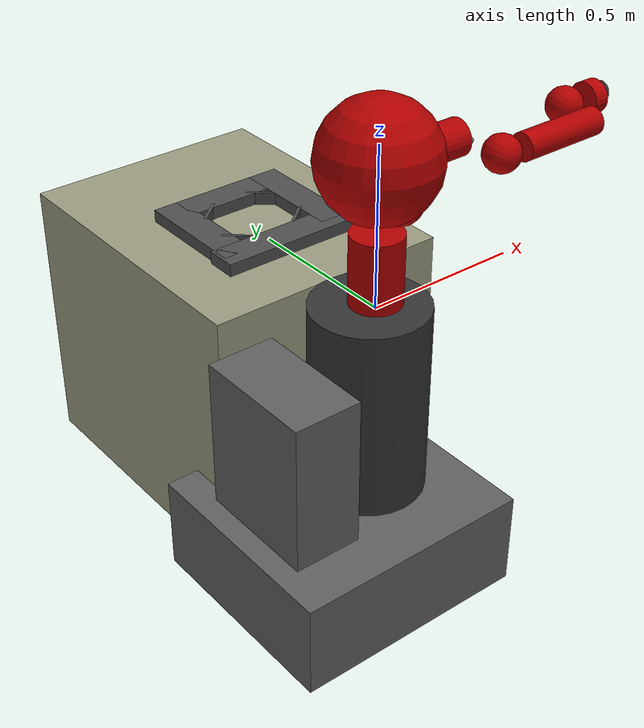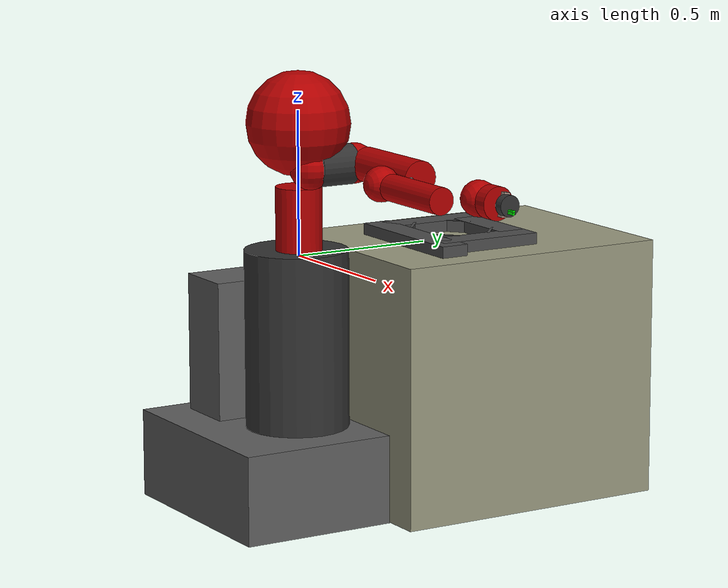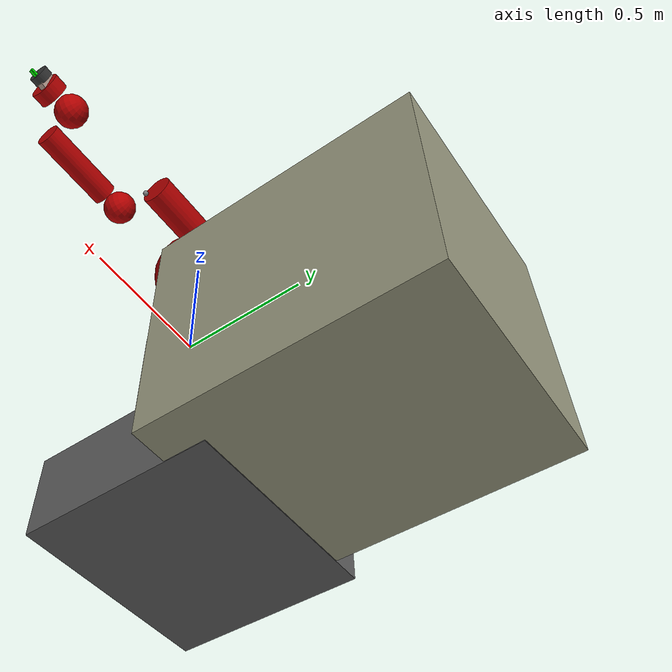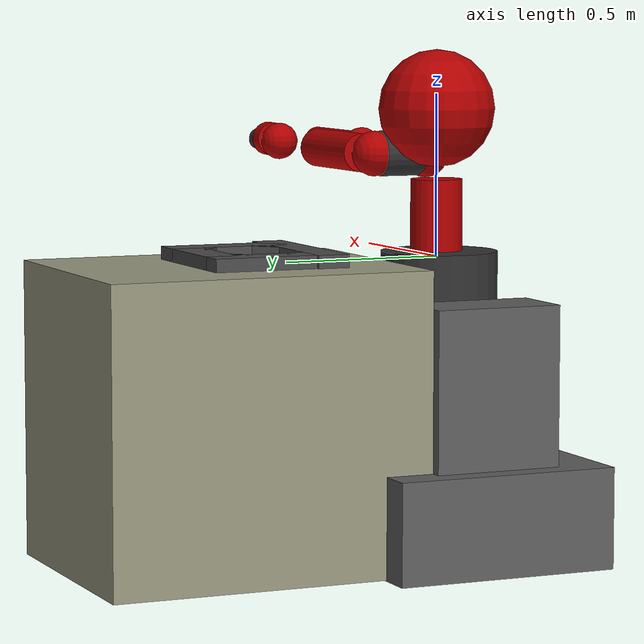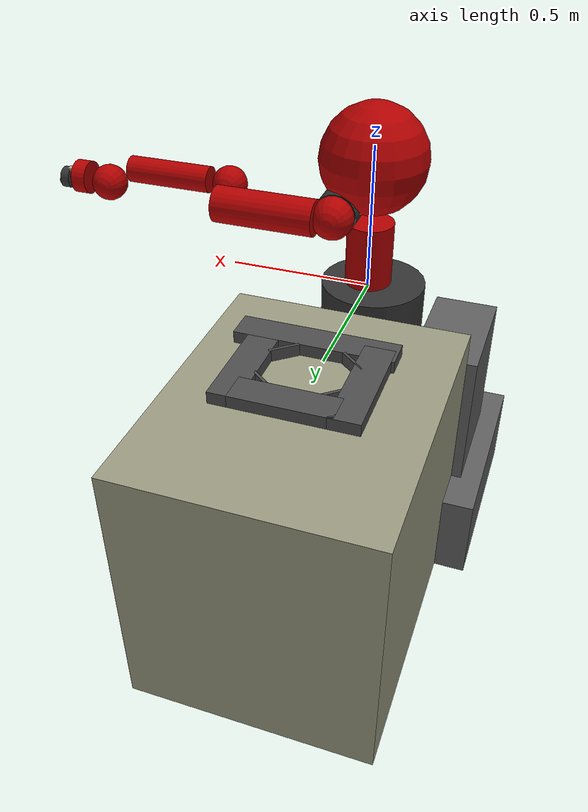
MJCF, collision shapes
<mujoco model="sawyer">
    <compiler angle="radian" meshdir="../meshes/sawyer/" />
    <option integrator="Euler" timestep="0.002" iterations="50"/>
    <size njmax="500" nconmax="100" />
    <asset>
        <texture type="skybox" builtin="gradient" rgb1=".8 1 1" rgb2=".6 1 1" width="32" height="32"></texture>
        <mesh name="pedestal" file="pedestal.stl" />
        <mesh name="base" file="base.stl" />
        <mesh name="l0" file="l0.stl" />
        <mesh name="head" file="head.stl" />
        <mesh name="l1" file="l1.stl" />
        <mesh name="l2" file="l2.stl" />
        <mesh name="l3" file="l3.stl" />
        <mesh name="l4" file="l4.stl" />
        <mesh name="l5" file="l5.stl" />
        <mesh name="l6" file="l6.stl" />
    </asset>

    <visual>
        <headlight ambient="0.5 0.5 0.5"  />
    </visual>

    <default>
        <joint limited="true" damping="1" stiffness="0" armature=".1" user="0"/>
        <geom solref="0.008 1" solimp="0.95 0.95 0.01" margin="0.001" user="0"/>
        <motor ctrllimited="true" ctrlrange="-1 1"/>
        <position ctrllimited="true"/>

        <default class='0'>
            <geom friction="1 0.005 0.001" rgba=".75 .6 .5 1" contype="1" conaffinity="0"/>
        </default>

        <default class='1'>
            <geom friction="1 0.005 0.001" rgba=".7 .6 .55 1" contype="4" conaffinity="2"/>
        </default>

        <default class='arm'>
            <joint damping="5"/>
        </default>
    </default>

    <equality>
        <weld body1="mocap" body2="leftclaw" solref="0.01"></weld>
    </equality>

    <worldbody>
        <camera pos="0 1.2 0.8" euler="-0.8 0 3.1415" name="topview" />

        <geom name="tableTop" type="box" pos="0 0.7 -.455" size="0.4 0.5 0.455"
            rgba=".6 .6 .5 1" contype="15" conaffinity="15" />

              <!--type="plane"-->
              <!--pos="0 0.6 0"-->
              <!--size="0.4 0.2 0.5"-->
              <!--rgba=".6 .6 .5 1"-->
              <!--contype="15"-->

        <body name="base" pos="0 0 0">
            <site name="basesite" pos="0 0 0" size="0.01" />
            <inertial pos="0 0 0" mass="0" diaginertia="0 0 0" />
            <body name="controller_box" pos="0 0 0">
                <inertial pos="-0.325 0 -0.38" mass="46.64" diaginertia="1.71363 1.27988 0.809981" />
                <geom size="0.11 0.2 0.265" pos="-0.325 0 -0.38" type="box" rgba="0.37 0.37 0.37 1"/>
            </body>
            <body name="pedestal_feet" pos="0 0 0">
                <inertial pos="-0.1225 0 -0.758" mass="167.09" diaginertia="8.16095 9.59375 15.0785" />
                <geom size="0.385 0.35 0.155" pos="-0.1225 0 -0.758" type="box" rgba="0.37 0.37 0.37 1"
                      contype="0"
                      conaffinity="0"
                />
            </body>
            <body name="torso" pos="0 0 0">
                <inertial pos="0 0 0" mass="0.0001" diaginertia="1e-08 1e-08 1e-08" />
                <geom size="0.05 0.05 0.05" type="box" contype="0" conaffinity="0" group="1" rgba="0.37 0.37 0.37 1" />
            </body>
            <body name="pedestal" pos="0 0 0">
                <inertial pos="0 0 0" quat="0.659267 -0.259505 -0.260945 0.655692" mass="60.864" diaginertia="6.0869 5.81635 4.20915" />
                <geom pos="0.26 0.345 -0.91488" quat="0.5 0.5 -0.5 -0.5" type="mesh" contype="0" conaffinity="0" group="1" rgba="0.37 0.37 0.37 1" mesh="pedestal" />
                <geom size="0.18 0.31" pos="-0.02 0 -0.29" type="cylinder" rgba="0.2 0.2 0.2 0" />
            </body>
            <body name="right_arm_base_link" pos="0 0 0">
                <inertial pos="-0.0006241 -2.8025e-05 0.065404" quat="-0.209285 0.674441 0.227335 0.670558" mass="2.0687" diaginertia="0.00740351 0.00681776 0.00672942" />
                <geom type="mesh" contype="0" conaffinity="0" group="1" rgba="0.7 0.0 0.0 1" mesh="base" />
                <geom size="0.08 0.12" pos="0 0 0.12" type="cylinder" rgba="0.7 0.0 0.0 0" />
                <body name="right_l0" pos="0 0 0.08">
                    <inertial pos="0.024366 0.010969 0.14363" quat="0.894823 0.00899958 -0.170275 0.412573" mass="5.3213" diaginertia="0.0651588 0.0510944 0.0186218" />
                    <joint name="right_j0" pos="0 0 0" axis="0 0 1" limited="true" range="-3.0503 3.0503" damping="10"/>
                    <geom type="mesh" contype="0" conaffinity="0" group="1" rgba="0.7 0.0 0.0 1" mesh="l0" />
                    <geom size="0.07" pos="0.08 0 0.23" rgba="0.7 0.0 0.0 0" />
                    <body name="head" pos="0 0 0.2965">
                        <inertial pos="0.0053207 -2.6549e-05 0.1021" quat="0.999993 7.08405e-05 -0.00359857 -0.000626247" mass="1.5795" diaginertia="0.0118334 0.00827089 0.00496574" />
                        <geom type="mesh" contype="0" conaffinity="0" group="1" rgba="0.7 0.0 0.0 1" mesh="head" />
                        <geom size="0.18" pos="0 0 0.08" rgba="0.7 0.0 0.0 0" />
                        <body name="screen" pos="0.03 0 0.105" quat="0.5 0.5 0.5 0.5">
                            <inertial pos="0 0 0" mass="0.0001" diaginertia="1e-08 1e-08 1e-08" />
                            <geom size="0.12 0.07 0.001" type="box" contype="0" conaffinity="0" group="1" rgba="0.2 0.2 0.2 0" />
                            <geom size="0.001" rgba="0.2 0.2 0.2 0" />
                        </body>
                        <body name="head_camera" pos="0.0228027 0 0.216572" quat="0.342813 -0.618449 0.618449 -0.342813">
                            <inertial pos="0.0228027 0 0.216572" quat="0.342813 -0.618449 0.618449 -0.342813" mass="0" diaginertia="0 0 0" />
                            <site name="headsite" pos="0 0 0" size="0.01" />
                        </body>
                    </body>
                    <body name="right_torso_itb" pos="-0.055 0 0.22" quat="0.707107 0 -0.707107 0">
                        <inertial pos="0 0 0" mass="0.0001" diaginertia="1e-08 1e-08 1e-08" />
                    </body>
                    <body name="right_l1" pos="0.081 0.05 0.237" quat="0.5 -0.5 0.5 0.5">
                        <inertial pos="-0.0030849 -0.026811 0.092521" quat="0.424888 0.891987 0.132364 -0.0794296" mass="4.505" diaginertia="0.0224339 0.0221624 0.0097097" />
                        <joint name="right_j1" pos="0 0 0" axis="0 0 1"
                               limited="true" range="-3.8 -0.5"
                               damping="10"/>
                        <geom type="mesh" contype="0" conaffinity="0" group="1" rgba="0.7 0.0 0.0 1" mesh="l1" />
                        <geom size="0.07" pos="0 0 0.1225" rgba="0.7 0.0 0.0 0" />
                        <body name="right_l2" pos="0 -0.14 0.1425" quat="0.707107 0.707107 0 0">
                            <inertial pos="-0.00016044 -0.014967 0.13582" quat="0.707831 -0.0524761 0.0516007 0.702537" mass="1.745" diaginertia="0.0257928 0.025506 0.00292515" />
                            <joint name="right_j2" pos="0 0 0" axis="0 0 1" limited="true" range="-3.0426 3.0426" damping="10"/>
                            <geom type="mesh" contype="0" conaffinity="0" group="1" rgba="0.7 0.0 0.0 1" mesh="l2" />
                            <geom size="0.06 0.17" pos="0 0 0.08" type="cylinder" rgba="0.7 0.0 0.0 0" />
                            <body name="right_l3" pos="0 -0.042 0.26" quat="0.707107 -0.707107 0 0">
                                <site name="armsite" pos="0 0 0" size="0.01" />
                                <inertial pos="-0.0048135 -0.0281 -0.084154" quat="0.902999 0.385391 -0.0880901 0.168247" mass="2.5097" diaginertia="0.0102404 0.0096997 0.00369622" />
                                <joint name="right_j3" pos="0 0 0" axis="0 0 1" limited="true" range="-3.0439 3.0439" damping="10"/>
                                <geom type="mesh" contype="0" conaffinity="0" group="1" rgba="0.7 0.0 0.0 1" mesh="l3" />
                                <geom size="0.06" pos="0 -0.01 -0.12" rgba="0.7 0.0 0.0 0" />
                                <body name="right_l4" pos="0 -0.125 -0.1265" quat="0.707107 0.707107 0 0">
                                    <inertial pos="-0.0018844 0.0069001 0.1341" quat="0.803612 0.031257 -0.0298334 0.593582" mass="1.1136" diaginertia="0.0136549 0.0135493 0.00127353" />
                                    <joint name="right_j4" pos="0 0 0" axis="0 0 1" limited="true" range="-2.9761 2.9761" damping="10" />
                                    <geom type="mesh" contype="0" conaffinity="0" group="1" rgba="0.7 0.0 0.0 1" mesh="l4" />
                                    <geom size="0.045 0.15" pos="0 0 0.11" type="cylinder" rgba="0.7 0.0 0.0 0" />
                                    <body name="right_arm_itb" pos="-0.055 0 0.075" quat="0.707107 0 -0.707107 0">
                                        <inertial pos="0 0 0" mass="0.0001" diaginertia="1e-08 1e-08 1e-08" />
                                    </body>
                                    <body name="right_l5" pos="0 0.031 0.275" quat="0.707107 -0.707107 0 0">
                                        <inertial pos="0.0061133 -0.023697 0.076416" quat="0.404076 0.9135 0.0473125 0.00158335" mass="1.5625" diaginertia="0.00474131 0.00422857 0.00190672" />
                                        <joint name="right_j5" pos="0 0 0" axis="0 0 1" limited="true" range="-2.9761 2.9761" damping="10"/>
                                        <geom type="mesh" contype="0" conaffinity="0" group="1" rgba="0.7 0.0 0.0 1" mesh="l5" />
                                        <geom size="0.06" pos="0 0 0.1" rgba="0.7 0.0 0.0 0" />
                                        <body name="right_hand_camera" pos="0.039552 -0.033 0.0695" quat="0.707107 0 0.707107 0">
                                            <inertial pos="0.039552 -0.033 0.0695" quat="0.707107 0 0.707107 0" mass="0" diaginertia="0 0 0" />
                                        </body>
                                        <body name="right_wrist" pos="0 0 0.10541" quat="0.707107 0.707107 0 0">
                                            <inertial pos="0 0 0.10541" quat="0.707107 0.707107 0 0" mass="0" diaginertia="0 0 0" />
                                        </body>
                                        <body name="right_l6" pos="0 -0.11 0.1053" quat="0.0616248 0.06163 -0.704416 0.704416">
                                            <inertial pos="-8.0726e-06 0.0085838 -0.0049566" quat="0.479044 0.515636 -0.513069 0.491322" mass="0.3292" diaginertia="0.000360258 0.000311068 0.000214974" />
                                            <joint name="right_j6" pos="0 0 0" axis="0 0 1" limited="true" range="-4.7124 4.7124" damping="10"/>
                                            <geom type="mesh" contype="0" conaffinity="0" group="1" rgba="0.7 0.0 0.0 1" mesh="l6" />
                                            <geom size="0.055 0.025" pos="0 0.015 -0.01" type="cylinder" rgba="0.7 0.0 0.0 0" />
                                            <body name="right_hand" pos="0 0 0.0245" quat="0.707107 0 0 0.707107">
                                                <inertial pos="1e-08 1e-08 1e-08" quat="0.820473 0.339851 -0.17592 0.424708" mass="1e-08" diaginertia="1e-08 1e-08 1e-08" />
                                                <geom size="0.035 0.015" pos="0 0 0.02" type="cylinder" rgba="0.2 0.2 0.2 0"/>

<!--  ================= BEGIN GRIPPER ================= /-->
                                                <body name="claw" pos="0 0 0" quat="-1 0 1 0">
                                                    <geom class="1" name="Geomclaw" type="box" size="0.01 0.04 0.01" />

                                                    <body name="rightclaw"
                                                          pos=".01 .015 0" >
                                                        <geom name="rightclaw_it" class="1" type="box" pos="0 0 0" size="0.05 0.005 0.005" friction="0.001 0.005 0.0001" rgba="0.0 1.0 0.0 1.0"/>
                                                    </body>

                                                    <body name="leftclaw" pos=".01 .02 0">
                                                        <geom name="leftclaw_it" class="1" type="box" pos="0 0 0" size="0.05 0.005 0.005" friction="0.001 0.005 0.0001" rgba="0.0 1.0 0.0 1.0"/>
                                                        <site name="endeffector" pos="0 0 0" size="0.01" />
                                                    </body>
                                                </body>
<!--  ================= END GRIPPER ================= /-->

                                            </body>
                                        </body>
                                    </body>
                                    <body name="right_l4_2" pos="0 0 0">
                                        <inertial pos="1e-08 1e-08 1e-08" quat="0.820473 0.339851 -0.17592 0.424708" mass="1e-08" diaginertia="1e-08 1e-08 1e-08" />
                                        <geom size="0.06" pos="0 0.01 0.26"
                                              rgba="0.2 0.2 0.2 0"
                                              contype="0"
                                              conaffinity="0"
                                        />
                                    </body>
                                </body>
                            </body>
                            <body name="right_l2_2" pos="0 0 0">
                                <inertial pos="1e-08 1e-08 1e-08" quat="0.820473 0.339851 -0.17592 0.424708" mass="1e-08" diaginertia="1e-08 1e-08 1e-08" />
                                <geom size="0.06" pos="0 0 0.26" rgba="0.2 0.2 0.2 0"
                                      contype="0"
                                      conaffinity="0"
                                />
                            </body>
                        </body>
                        <body name="right_l1_2" pos="0 0 0">
                            <inertial pos="1e-08 1e-08 1e-08" quat="0.820473 0.339851 -0.17592 0.424708" mass="1e-08" diaginertia="1e-08 1e-08 1e-08" />
                            <geom size="0.07 0.07" pos="0 0 0.035" type="cylinder" rgba="0.2 0.2 0.2 0"/>
                        </body>
                    </body>
                </body>
            </body>
        </body>

        <body mocap="true" name="mocap" pos="0 0 0">
            <!--For debugging, set the alpha to 1-->
            <geom conaffinity="0" contype="0" pos="0 0 0" rgba="0.5 0.5 0.5 0" size="0.1 0.02 0.02" type="box"></geom>
        </body>

<!--  up right corner block       |-->
        <body name="hurdleblock1" pos="-0.1 0.52 0.0">
            <inertial pos="0 0 0" mass='2000000000'/>
            <geom name="hurdleblock1"
                  type="box"
                  pos="0 0 0"
                  size="0.005 0.05 0.04"
                  rgba="0.3 .3 0.3 1"
                  contype="3"
                  conaffinity="2"
                  axisangle='0 0 1 0.875'
            />
        </body>

<!--  bottom left corner block       |-->
         <body name="hurdleblock2" pos="0.12 0.7 0.0">
            <inertial pos="0 0 0" mass='2000000000'/>
            <geom name="hurdleblock2"
                  type="box"
                  pos="0 0 0"
                  size="0.005 0.05 0.04"
                  rgba="0.3 .3 0.3 1"
                  contype="3"
                  conaffinity="2"
                  axisangle='0 0 1 0.875'
            />
        </body>

        <!--  bottom right corner block       |-->
        <body name="hurdleblock3" pos="-0.08 0.7 0.0">
            <inertial pos="0 0 0" mass='2000000000'/>
            <geom name="hurdleblock3"
                  type="box"
                  pos="0 0 0"
                  size="0.005 0.05 0.04"
                  rgba="0.3 .3 0.3 1"
                  contype="3"
                  conaffinity="2"
                  axisangle='0 0 1 -0.875'
            />
        </body>

        <!--  top left corner block       |-->
        <body name="hurdleblock4" pos="0.12 0.52 0.0">
            <inertial pos="0 0 0" mass='2000000000'/>
            <geom name="hurdleblock4"
                  type="box"
                  pos="0 0 0"
                  size="0.005 0.05 0.04"
                  rgba="0.3 .3 0.3 1"
                  contype="3"
                  conaffinity="2"
                  axisangle='0 0 1 -0.875'
            />
        </body>

        <body name="hurdle1" pos="-0.16 0.62 0.0">
            <inertial pos="0 0 0" mass='2000000000'/>
            <geom name="hurdlebox1"
                  type="box"
                  pos="0 0 0"
                  size="0.05 0.19 0.04"
                  rgba="0.3 .3 0.3 1"
                  contype="3"
                  conaffinity="2"
            />
        </body>
        <body name="hurdle2" pos="0.03 0.76 0.0">
            <inertial pos="0 0 0" mass='2000000000'/>
            <geom name="hurdlebox2"
                  type="box"
                  pos="0 0 0"
                  size="0.16 0.05 0.04"
                  rgba="0.3 .3 0.3 1"
                  contype="3"
                  conaffinity="2"
            />
        </body>

        <body name="hurdle3" pos="0.04 0.44 0.0">
            <inertial pos="0 0 0" mass='2000000000'/>
            <geom name="hurdlebox3"
                  type="box"
                  pos="0 0 0"
                  size="0.26 0.05 0.04"
                  rgba="0.3 .3 0.3 1"
                  contype="3"
                  conaffinity="4"
            />
        </body>

        <body name="hurdle4" pos="0.2 0.62 0.0">
            <inertial pos="0 0 0" mass='2000000000'/>
            <geom name="hurdlebox4"
                  type="box"
                  pos="0 0 0"
                  size="0.05 0.19 0.04"
                  rgba="0.3 .3 0.3 1"
                  contype="3"
                  conaffinity="2"
            />
        </body>
<!--                  type="box"-->
<!--                  pos="0 0 0"-->
<!--                  size="0.04 0.01 0.04"-->
<!--                  rgba="0.3 .3 0.3 1"-->
<!--                  contype="4"-->
<!--                  conaffinity="2"-->

        <body name="puck" pos="0 0 0.1">
            <joint name="puckjoint" type="free" limited='false' damping="0" armature="0" />
                   <!--axis="1 0 0"-->
                   <!--axis="0 1 0"-->
                   <!--axis="0 0 1"-->
            <inertial pos="0 0 0" mass=".1" diaginertia="100000 100000 100000"/>
            <!--type="box"-->
            <!--size="0.02 0.02 0.02"-->
            <geom name="puckbox"
                  type="cylinder"
                  pos="0 0 0"
                  size="0.04 0.015"
                  rgba="0 .5 1 0"
                  contype="2"
                  conaffinity="4"
            />
        </body>

        <body name="hand-goal" pos="0 0 0">
            <joint name="hand-goal-joint" type="free" limited='false'
                   damping="0" armature="0" />
            <geom name="hand-goal-marker" type="sphere" pos="0 0 0" size="0.02"
                  rgba=".9 .9 .1 0" contype="0" conaffinity="8"/>
            <site name="hand-goal-site" pos="0 0 0" size="0.01" rgba="0 0 0 0" />
        </body>

        <body name="puck-goal" pos="0 0 0">
            <joint name="puck-goal-joint" type="free" limited='false'
                   damping="0" armature="0" />
            <geom name="puck-goal-marker" type="sphere" pos="0 0 0" size="0.02"
                  rgba=".9 .1 .1 0" contype="0" conaffinity="8"/>
            <site name="puck-goal-site" pos="0 0 0" size="0.01" rgba="0 0 0 0" />
        </body>

    </worldbody>

    <actuator>
        <motor joint="right_j0" ctrlrange="-100.0 100.0" ctrllimited="false"/>
        <motor joint="right_j1" ctrlrange="-100.0 100.0" ctrllimited="false"/>
        <motor joint="right_j2" ctrlrange="-100.0 100.0" ctrllimited="false"/>
        <motor joint="right_j3" ctrlrange="-100.0 100.0" ctrllimited="false"/>
        <motor joint="right_j4" ctrlrange="-100.0 100.0" ctrllimited="false"/>
        <motor joint="right_j5" ctrlrange="-100.0 100.0" ctrllimited="false"/>
        <motor joint="right_j6" ctrlrange="-100.0 100.0" ctrllimited="false"/>
    </actuator>

</mujoco>
